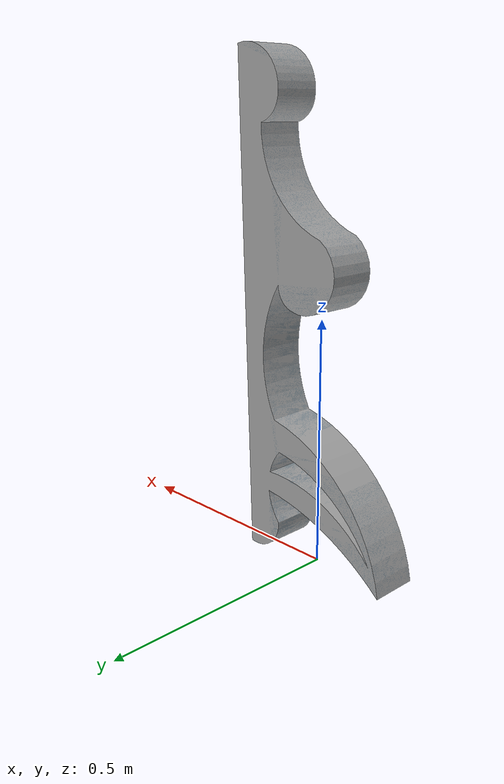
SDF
<?xml version='1.0'?>
<sdf version='1.6'>
  <model name='figurine_1'>
    <link name='link_0'>
         <visual name='visual'>
        <pose frame=''>0 0 0 0 -0 0</pose>
        <geometry>
          <mesh>
            <uri>model://figurine_1/meshes/venus.dae</uri>
            <scale>1 1 1</scale>
          </mesh>
        </geometry>
            	 <material>
          <script>
            <uri>model://figurine_1/materials/scripts</uri>
            <uri>model://figurine_1/materials/textures</uri>
            <name>venus</name>
          </script>
        </material>
        <cast_shadows>1</cast_shadows>
        <transparency>0</transparency>
      </visual>
      <collision name='collision'>
        <laser_retro>0</laser_retro>
        <max_contacts>10</max_contacts>
        <pose frame=''>0 0 0 0 -0 0</pose>
        <geometry>
          <mesh>
            <uri>model://figurine_1/meshes/venus.dae</uri>
            <scale>1 1 1</scale>
          </mesh>
        </geometry>
     </collision>
    </link>
    <static>1</static>
    <allow_auto_disable>1</allow_auto_disable>
  </model>
</sdf>
